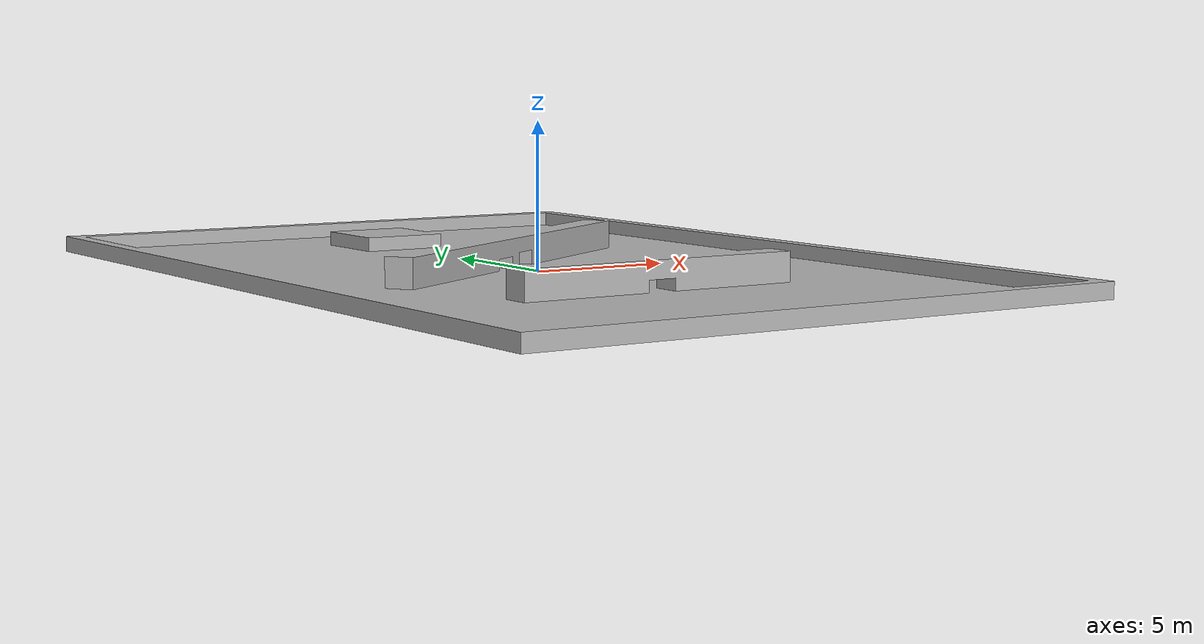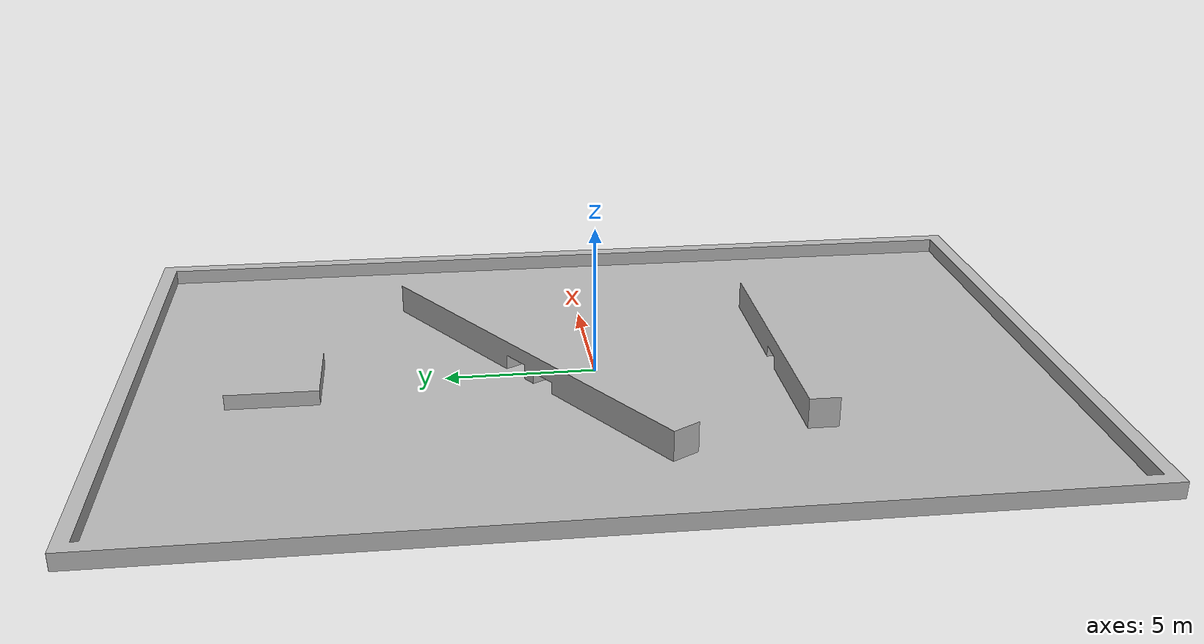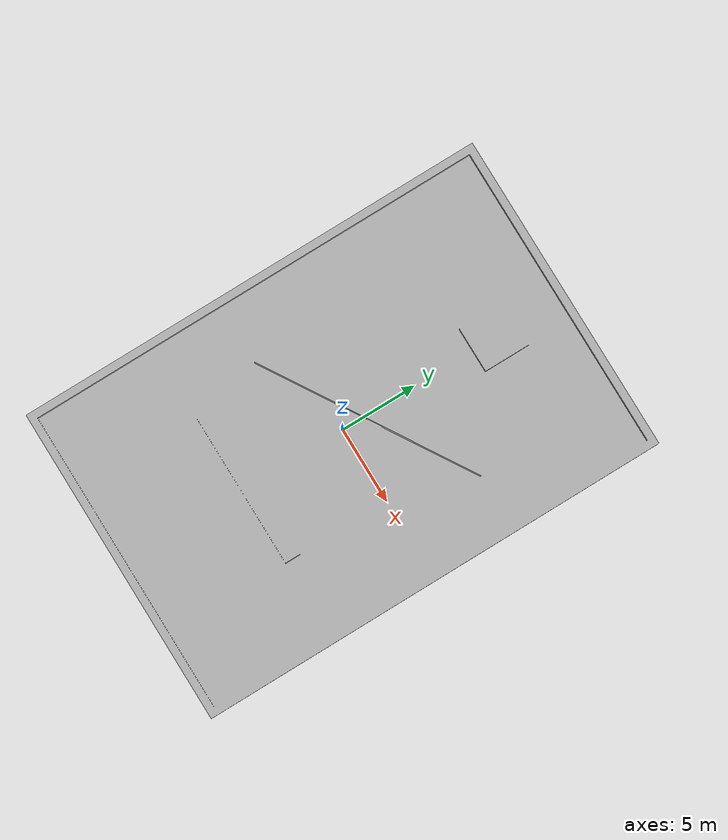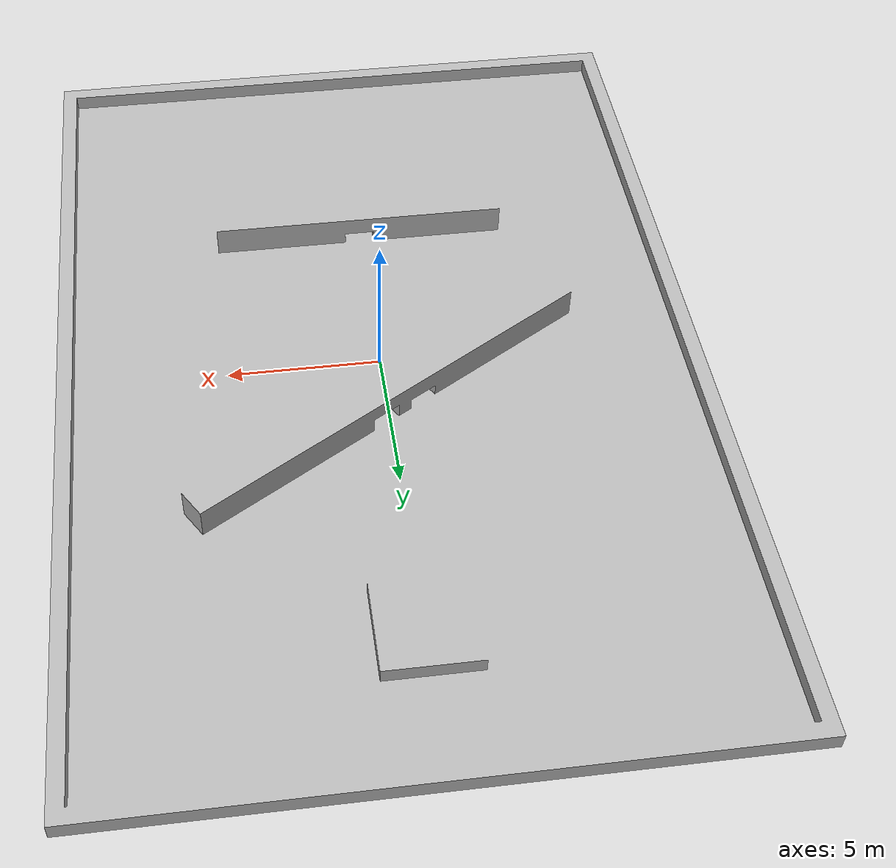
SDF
<?xml version="1.0" ?>
<sdf version="1.5">
  <model name="scenario_4b">
    <pose>0 0 0 0 0 0</pose>
    <static>true</static>
    <link name="body">
      <visual name="visual">
        <geometry>
          <mesh><uri>model://scenario_4b/media/Scenario_4b.dae</uri></mesh>
        </geometry>
      </visual>
      <collision name="collision">
        <geometry>
          <mesh><uri>model://scenario_4b/media/Scenario_4b.dae</uri></mesh>
        </geometry>
      </collision>
    </link>
  </model>
</sdf>
